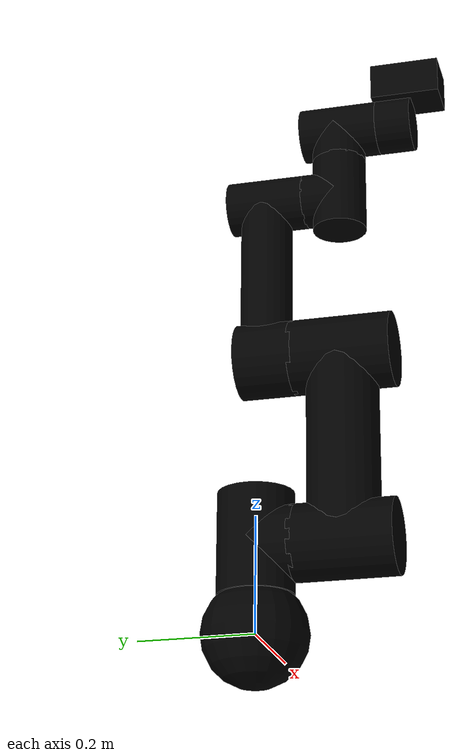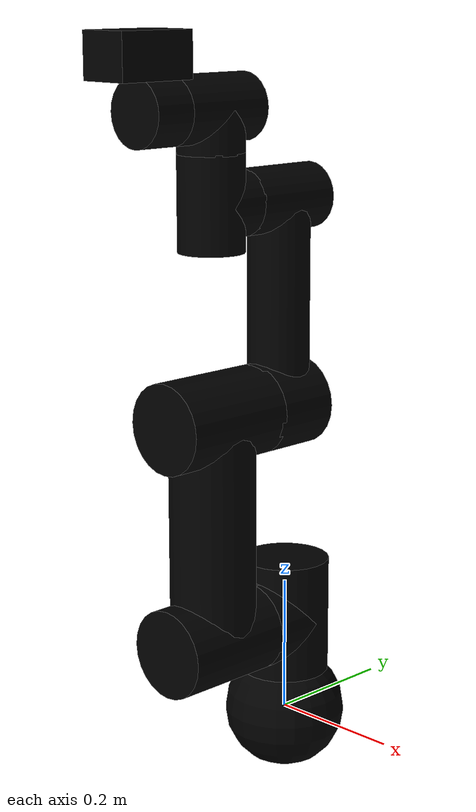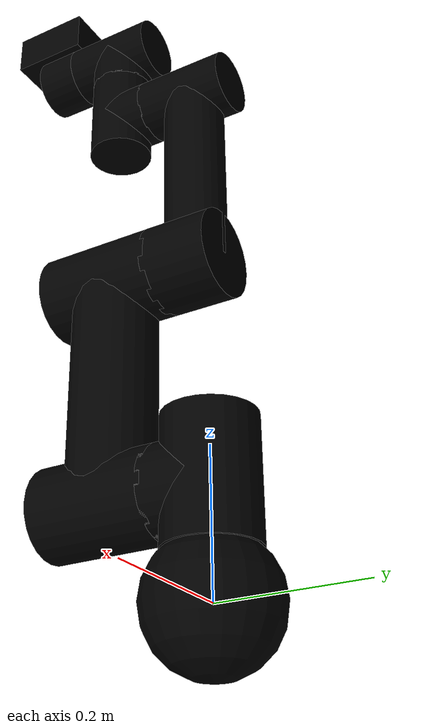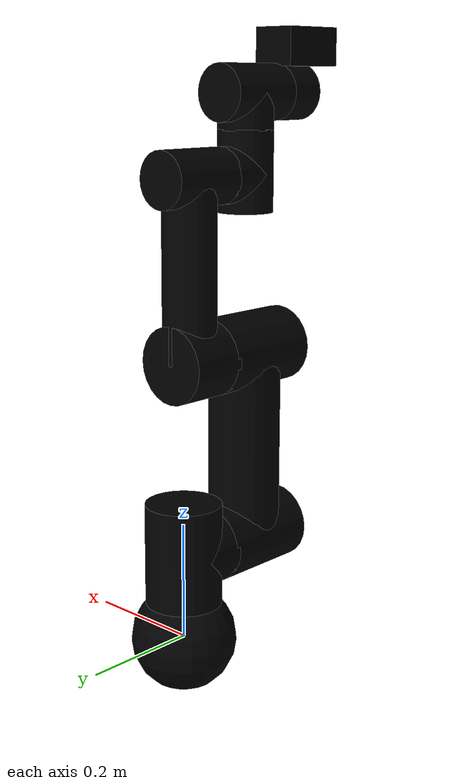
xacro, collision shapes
<?xml version="1.0"?>
<robot xmlns:xacro="http://wiki.ros.org/xacro" name="tm7s">

  <xacro:arg name="ns" default="" />
  <xacro:arg name="prefix" default="" />

  <xacro:arg name="gripper" default="none" />

  <xacro:arg name="color" default="none" />

  <xacro:arg name="trans_hw_iface" default="hardware_interface/PositionJointInterface" />

  <xacro:include filename="$(find tmr_description)/xacro/macro.gazebo.xacro" />
  <xacro:include filename="$(find tmr_description)/xacro/macro.transmission.xacro" />
  <xacro:include filename="$(find tmr_description)/xacro/macro.materials.xacro" />

  <!-- tm7s -->
  <xacro:include filename="$(find tmr_description)/xacro/macro.tm7s.urdf.xacro" />

  <xacro:tmr_gazebo ns="$(arg ns)" prefix="$(arg prefix)" />
  <xacro:tmr_transmission prefix="$(arg prefix)" hw_iface="$(arg trans_hw_iface)" />
  <xacro:tmr_materials/>

  <!-- Arm -->
  <xacro:property name="color" value="$(arg color)"/>
  <xacro:if value="${color == 'none'}">
    <xacro:tm7s ns="$(arg ns)" prefix="$(arg prefix)" />
  </xacro:if>
  <!-- Arm.color.stl -->
  <xacro:unless value="${color == 'none'}">
    <xacro:tm7s ns="$(arg ns)" prefix="$(arg prefix)" color="${color}" format="stl" />
  </xacro:unless>

  <!-- Arm + Gripper -->
  <xacro:property name="gripper" value="$(arg gripper)"/>
  <xacro:if value="${gripper == 'robotiq_2f'}">
    <xacro:include filename="$(find tmr_description)/xacro/gripper/robotiq_2f.urdf.xacro" />
    <xacro:robotiq_2f prefix="$(arg prefix)"/>
  </xacro:if>
  <xacro:if value="${gripper == 'rg2'}">
    <xacro:include filename="$(find tmr_description)/xacro/gripper/on_robot_rg2.urdf.xacro" />
    <xacro:on_robot_rg2 prefix="$(arg prefix)"/>
  </xacro:if>

</robot>

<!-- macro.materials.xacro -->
<robot xmlns:xacro="http://www.ros.org/wiki/xacro">
  <xacro:macro name="tmr_materials">
    <material name="none">
      <color rgba="0.0 0.0 0.0 1.0" />
    </material>
    <material name="grey">
      <color rgba="0.5 0.5 0.5 1.0" />
    </material>
    <material name="white">
      <color rgba="0.95 0.95 0.95 1.0" />
    </material>
    <material name="red">
      <color rgba="0.95 0.0 0.0 1.0" />
    </material>
    <material name="orange">
      <color rgba="1.0 0.5 0.0 1.0" />
    </material>
    <material name="yellow">
      <color rgba="1.0 1.0 0.0 1.0" />
    </material>
    <material name="green">
      <color rgba="0.0 1.0 0.0 1.0" />
    </material>
    <material name="blue">
      <color rgba="0.0 0.0 1.0 1.0" />
    </material>
    <material name="indigo">
      <color rgba="0.3 0.3 0.6 1.0" />
    </material>
    <material name="violet">
      <color rgba="0.6 0.0 1.0 1.0" />
    </material>
    <material name="black">
      <color rgba="0.0 0.0 0.0 1.0" />
    </material>
  </xacro:macro>
</robot>

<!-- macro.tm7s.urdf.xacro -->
<robot xmlns:xacro="http://wiki.ros.org/xacro">

  <xacro:include filename="$(find tmr_description)/xacro/macro.inertial.xacro" />

  <xacro:macro name="tm7s" params="ns prefix
    color:=none format:=obj">
    <xacro:property name="mass_0" value="1.0" />
    <xacro:property name="mass_1" value="4.32" />
    <xacro:property name="mass_2" value="9.46" />
    <xacro:property name="mass_3" value="2.62" />
    <xacro:property name="mass_4" value="1.77" />
    <xacro:property name="mass_5" value="1.77" />
    <xacro:property name="mass_6" value="0.72" />

<!--LinkDescription-->
  <link name="${prefix}link_0">
    <visual>
      <geometry>
        <mesh filename="package://tmr_description/meshes/tm5s/visual/tm5s-base.${format}" />
      </geometry>
      <material name="${color}" />
    </visual>
    <collision>
      <geometry>
        <sphere radius="0.09" />
      </geometry>
    </collision>
<!--inertial-->
    <xacro:cylinder_inertial_z radius="0.06" length="0.05" mass="${mass_0}">
      <origin xyz="0 0 0.025" rpy="0 0 0" />
    </xacro:cylinder_inertial_z>
  </link>

  <joint name="${prefix}joint_1" type="revolute">
    <parent link="${prefix}link_0" />
    <child link="${prefix}link_1" />
    <origin xyz="0 0 0.1484" rpy="0 0 0" />
    <axis xyz="0 0 1" />
<!--limit-->
    <limit lower="${-1.5*pi}" upper="${1.5*pi}" velocity="3.14" effort="320.0" />
  </joint>

  <link name="${prefix}link_1">
    <visual>
      <geometry>
        <mesh filename="package://tmr_description/meshes/tm5s/visual/tm5s-j1.${format}" />
      </geometry>
      <material name="${color}" />
    </visual>
    <collision>
      <geometry>
        <cylinder length="0.175" radius="0.065" />
      </geometry>
      <origin xyz="0 0 0.003" rpy="0 0 0" />
    </collision>
    <collision>
      <geometry>
        <cylinder length="0.0718" radius="0.065" />
      </geometry>
      <origin xyz="0 -0.0359 0" rpy="${-0.5*pi} 0 0" />
    </collision>
<!--inertial-->
    <xacro:cylinder_inertial_z radius="0.06" length="0.16" mass="${mass_1}">
      <origin xyz="0 0 0" rpy="0 0 0" />
    </xacro:cylinder_inertial_z>
  </link>

  <joint name="${prefix}joint_2" type="revolute">
    <parent link="${prefix}link_1" />
    <child link="${prefix}link_2" />
    <origin xyz="0 0 0" rpy="${-0.5*pi} ${-0.5*pi} 0" />
    <axis xyz="0 0 1" />
<!--limit-->
    <limit lower="${-pi}" upper="${pi}" velocity="3.14" effort="320" />
  </joint>

  <link name="${prefix}link_2">
    <visual>
      <geometry>
        <mesh filename="package://tmr_description/meshes/tm7s/visual/tm7s-a1.${format}" />
      </geometry>
      <material name="${color}" />
    </visual>
    <collision>
      <geometry>
        <cylinder length="0.175" radius="0.065" />
      </geometry>
      <origin xyz="0 0 -0.152" rpy="0 0 0" />
    </collision>
    <collision>
      <geometry>
        <cylinder length="0.329" radius="0.062" />
      </geometry>
      <origin xyz="0.1645 0 -0.149" rpy="0 ${0.5*pi} 0" />
    </collision>
    <collision>
      <geometry>
        <cylinder length="0.175" radius="0.065" />
      </geometry>
      <origin xyz="0.329 0 -0.152" rpy="0 0 0" />
    </collision>
<!--inertial-->
    <xacro:cylinder_inertial_x radius="0.06" length="0.329" mass="${mass_2}">
      <origin xyz="0.1645 0 -0.149" rpy="0 0 0" />
    </xacro:cylinder_inertial_x>
  </link>

  <joint name="${prefix}joint_3" type="revolute">
    <parent link="${prefix}link_2" />
    <child link="${prefix}link_3" />
    <origin xyz="0.329 0 0" rpy="0 0 0" />
    <axis xyz="0 0 1" />
<!--limit-->
    <limit lower="${-pi}" upper="${pi}" velocity="3.14" effort="320" />
  </joint>

  <link name="${prefix}link_3">
    <visual>
      <geometry>
        <mesh filename="package://tmr_description/meshes/tm7s/visual/tm7s-a2.${format}" />
      </geometry>
      <material name="${color}" />
    </visual>
    <collision>
      <geometry>
        <cylinder length="0.1" radius="0.065" />
      </geometry>
      <origin xyz="0 0 -0.0218" rpy="0 0 0" />
    </collision>
    <collision>
      <geometry>
        <cylinder length="0.298" radius="0.045" />
      </geometry>
      <origin xyz="0.149 0 -0.0163" rpy="0 ${0.5*pi} 0" />
    </collision>
    <collision>
      <geometry>
        <cylinder length="0.136" radius="0.047" />
      </geometry>
      <origin xyz="0.298 0 -0.0213" rpy="0 0 0" />
    </collision>
<!--inertial-->
    <xacro:cylinder_inertial_x radius="0.045" length="0.298" mass="${mass_3}">
      <origin xyz="0.149 0 -0.0163" rpy="0 0 0" />
    </xacro:cylinder_inertial_x>
  </link>

  <joint name="${prefix}joint_4" type="revolute">
    <parent link="${prefix}link_3" />
    <child link="${prefix}link_4" />
    <origin xyz="0.298 0 -0.1478" rpy="0 0 ${0.5*pi}" />
    <axis xyz="0 0 1" />
<!--limit-->
    <limit lower="${-pi}" upper="${pi}" velocity="3.92" effort="80" />
  </joint>

  <link name="${prefix}link_4">
    <visual>
      <geometry>
        <mesh filename="package://tmr_description/meshes/tm5s/visual/tm5s-j5.${format}" />
      </geometry>
      <material name="${color}" />
    </visual>
    <collision>
      <geometry>
        <cylinder length="0.0608" radius="0.047" />
      </geometry>
      <origin xyz="0 0 0.0304" rpy="0 0 0" />
    </collision>
    <collision>
      <geometry>
        <cylinder length="0.136" radius="0.047" />
      </geometry>
      <origin xyz="0 -0.005 0" rpy="${0.5*pi} 0 0" />
    </collision>
<!--inertial-->
    <xacro:cylinder_inertial_y radius="0.045" length="0.12" mass="${mass_4}">
      <origin xyz="0 0 0" rpy="0 0 0" />
    </xacro:cylinder_inertial_y>
  </link>

  <joint name="${prefix}joint_5" type="revolute">
    <parent link="${prefix}link_4" />
    <child link="${prefix}link_5" />
    <origin xyz="0 -0.1315 0" rpy="${0.5*pi} 0 0" />
    <axis xyz="0 0 1" />
<!--limit-->
    <limit lower="${-pi}" upper="${pi}" velocity="3.92" effort="80" />
  </joint>

  <link name="${prefix}link_5">
    <visual>
      <geometry>
        <mesh filename="package://tmr_description/meshes/tm5s/visual/tm5s-j6.${format}" />
      </geometry>
      <material name="${color}" />
    </visual>
    <collision>
      <geometry>
        <cylinder length="0.0608" radius="0.047" />
      </geometry>
      <origin xyz="0 0 -0.0304" rpy="0 0 0" />
    </collision>
    <collision>
      <geometry>
        <cylinder length="0.136" radius="0.047" />
      </geometry>
      <origin xyz="0 -0.005 0" rpy="${0.5*pi} 0 0" />
    </collision>
<!--inertial-->
    <xacro:cylinder_inertial_y radius="0.045" length="0.12" mass="${mass_5}">
      <origin xyz="0 0 0" rpy="0 0 0" />
    </xacro:cylinder_inertial_y>
  </link>

  <joint name="${prefix}joint_6" type="revolute">
    <parent link="${prefix}link_5" />
    <child link="${prefix}link_6" />
    <origin xyz="0 -0.13495 0" rpy="${0.5*pi} 0 0" />
    <axis xyz="0 0 1" />
<!--limit-->
    <limit lower="${-1.5*pi}" upper="${1.5*pi}" velocity="3.92" effort="80" />
  </joint>

  <link name="${prefix}link_6">
    <visual>
      <geometry>
        <mesh filename="package://tmr_description/meshes/tm5s/visual/tm5s-io.${format}" />
      </geometry>
      <material name="${color}" />
    </visual>
    <collision>
      <geometry>
        <cylinder length="0.062" radius="0.047" />
      </geometry>
      <origin xyz="0 0 -0.031" rpy="0 0 0" />
    </collision>
    <collision>
      <geometry>
        <box size="0.076 0.064 0.12" />
      </geometry>
      <origin xyz="0 0.074 -0.008" rpy="0 0 0" />
    </collision>
<!--inertial-->
    <xacro:cylinder_inertial_z radius="0.045" length="0.06" mass="${mass_6}">
      <origin xyz="0 0 0" rpy="0 0 0" />
    </xacro:cylinder_inertial_z>
  </link>

  <link name="${prefix}base" />
  <joint name="${prefix}base_fixed_joint" type="fixed">
    <parent link="${prefix}base" />
    <child link="${prefix}link_0" />
    <origin xyz="0 0 0" rpy="0 0 0" />
  </joint>

  <link name="${prefix}flange" />
  <joint name="${prefix}flange_fixed_joint" type="fixed">
    <parent link="${prefix}link_6" />
    <child link="${prefix}flange" />
    <origin xyz="0 0 0" rpy="0 0 0" />
  </joint>
<!--LinkDescription-->

  </xacro:macro>

</robot>
